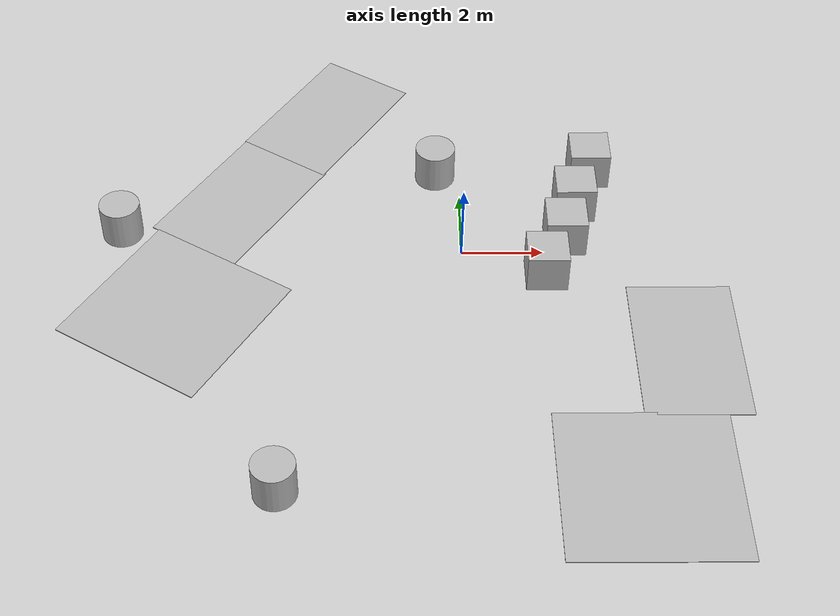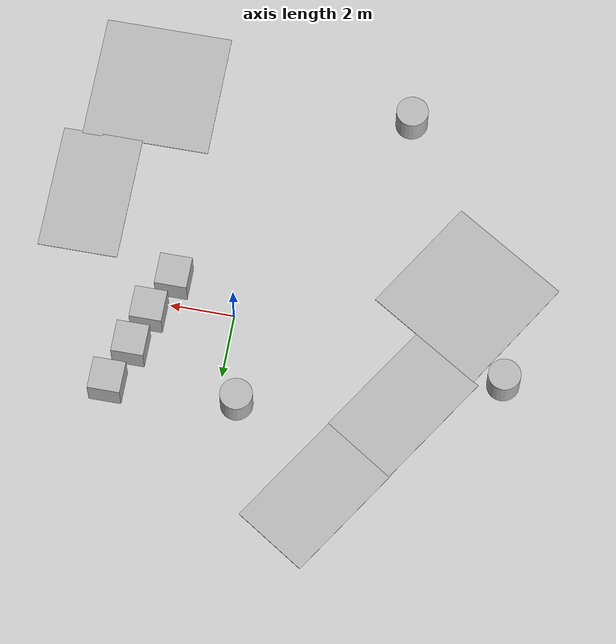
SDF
<?xml version="1.0" ?>
<sdf version="1.6">
  <world name="default">

    <include>
      <uri>model://sun</uri>
    </include>

    <include>
      <uri>model://asphalt_plane</uri>
    </include>

    <include>
      <uri>model://blue_tape_line</uri>
      <pose>5.17 -3.25 0.05 0 0 0</pose>
      <name>line1</name>
    </include>

    <include>
      <uri>model://blue_tape_line</uri>
      <pose>-5.578 1.897 0.05 0 0 2.5658</pose>
      <name>line2</name>
    </include>

    <include>
      <uri>model://blue_tape_line</uri>
      <pose>-3.462 5.199 0.05 0 0 2.5678</pose>
      <name>line3</name>
    </include>

    <include>
      <uri>model://blue_tape_corner</uri>
      <pose>3.832 -7.182 0.05 0 0 0</pose>
      <name>corner1</name>
    </include>

    <include>
      <uri>model://blue_tape_corner</uri>
      <pose>-6.911 -1.941 0.05 0 0 -2.1287</pose>
      <name>corner2</name>
    </include>

    <model name='box1'>
      <static>1</static>
      <pose>3.34 2.9 0.5 0 0 0</pose>
      <link name='link'>
        <collision name='collision'>
          <geometry>
            <box>
              <size>1 1 1</size>
            </box>
          </geometry>
          <max_contacts>10</max_contacts>
          <surface>
            <contact>
              <ode/>
            </contact>
            <bounce/>
            <friction>
              <torsional>
                <ode/>
              </torsional>
              <ode/>
            </friction>
          </surface>
        </collision>
        <visual name='visual'>
          <cast_shadows>0</cast_shadows>
          <geometry>
            <box>
              <size>1 1 1</size>
            </box>
          </geometry>
        </visual>
        <self_collide>0</self_collide>
        <enable_wind>0</enable_wind>
        <kinematic>0</kinematic>
      </link>
    </model>

    <model name='box2'>
      <static>1</static>
      <pose>2.88 1.61 0.5 0 0 0</pose>
      <link name='link'>
        <collision name='collision'>
          <geometry>
            <box>
              <size>1 1 1</size>
            </box>
          </geometry>
          <max_contacts>10</max_contacts>
          <surface>
            <contact>
              <ode/>
            </contact>
            <bounce/>
            <friction>
              <torsional>
                <ode/>
              </torsional>
              <ode/>
            </friction>
          </surface>
        </collision>
        <visual name='visual'>
          <cast_shadows>0</cast_shadows>
          <geometry>
            <box>
              <size>1 1 1</size>
            </box>
          </geometry>
        </visual>
        <self_collide>0</self_collide>
        <enable_wind>0</enable_wind>
        <kinematic>0</kinematic>
      </link>
    </model>

    <model name='box3'>
      <static>1</static>
      <pose>2.56 0.42 0.5 0 0 0</pose>
      <link name='link'>
        <collision name='collision'>
          <geometry>
            <box>
              <size>1 1 1</size>
            </box>
          </geometry>
          <max_contacts>10</max_contacts>
          <surface>
            <contact>
              <ode/>
            </contact>
            <bounce/>
            <friction>
              <torsional>
                <ode/>
              </torsional>
              <ode/>
            </friction>
          </surface>
        </collision>
        <visual name='visual'>
          <cast_shadows>0</cast_shadows>
          <geometry>
            <box>
              <size>1 1 1</size>
            </box>
          </geometry>
        </visual>
        <self_collide>0</self_collide>
        <enable_wind>0</enable_wind>
        <kinematic>0</kinematic>
      </link>
    </model>

    <model name='box4'>
      <static>1</static>
      <pose>2.02 -0.78 0.5 0 0 0</pose>
      <link name='link'>
        <collision name='collision'>
          <geometry>
            <box>
              <size>1 1 1</size>
            </box>
          </geometry>
          <max_contacts>10</max_contacts>
          <surface>
            <contact>
              <ode/>
            </contact>
            <bounce/>
            <friction>
              <torsional>
                <ode/>
              </torsional>
              <ode/>
            </friction>
          </surface>
        </collision>
        <visual name='visual'>
          <cast_shadows>0</cast_shadows>
          <geometry>
            <box>
              <size>1 1 1</size>
            </box>
          </geometry>
        </visual>
        <self_collide>0</self_collide>
        <enable_wind>0</enable_wind>
        <kinematic>0</kinematic>
      </link>
    </model>

    <model name='cyl1'>
      <static>1</static>
      <pose>-0.61 2.8 0.5 0 0 0</pose>
      <link name='link'>
        <collision name='collision'>
          <geometry>
            <cylinder>
              <radius>0.5</radius>
              <length>1</length>
            </cylinder>
          </geometry>
          <max_contacts>10</max_contacts>
          <surface>
            <contact>
              <ode/>
            </contact>
            <bounce/>
            <friction>
              <torsional>
                <ode/>
              </torsional>
              <ode/>
            </friction>
          </surface>
        </collision>
        <visual name='visual'>
          <cast_shadows>0</cast_shadows>
          <geometry>
            <cylinder>
              <radius>0.5</radius>
              <length>1</length>
            </cylinder>
          </geometry>
        </visual>
        <self_collide>0</self_collide>
        <enable_wind>0</enable_wind>
        <kinematic>0</kinematic>
      </link>
    </model>

    <model name='cyl2'>
      <static>1</static>
      <pose>-8.44 0.74 0.5 0 0 0</pose>
      <link name='link'>
        <collision name='collision'>
          <geometry>
            <cylinder>
              <radius>0.5</radius>
              <length>1</length>
            </cylinder>
          </geometry>
          <max_contacts>10</max_contacts>
          <surface>
            <contact>
              <ode/>
            </contact>
            <bounce/>
            <friction>
              <torsional>
                <ode/>
              </torsional>
              <ode/>
            </friction>
          </surface>
        </collision>
        <visual name='visual'>
          <cast_shadows>0</cast_shadows>
          <geometry>
            <cylinder>
              <radius>0.5</radius>
              <length>1</length>
            </cylinder>
          </geometry>
        </visual>
        <self_collide>0</self_collide>
        <enable_wind>0</enable_wind>
        <kinematic>0</kinematic>
      </link>
    </model>

    <model name='cyl3'>
      <static>1</static>
      <pose>-4.26 -7.33 0.5 0 0 0</pose>
      <link name='link'>
        <collision name='collision'>
          <geometry>
            <cylinder>
              <radius>0.5</radius>
              <length>1</length>
            </cylinder>
          </geometry>
          <max_contacts>10</max_contacts>
          <surface>
            <contact>
              <ode/>
            </contact>
            <bounce/>
            <friction>
              <torsional>
                <ode/>
              </torsional>
              <ode/>
            </friction>
          </surface>
        </collision>
        <visual name='visual'>
          <cast_shadows>0</cast_shadows>
          <geometry>
            <cylinder>
              <radius>0.5</radius>
              <length>1</length>
            </cylinder>
          </geometry>
        </visual>
        <self_collide>0</self_collide>
        <enable_wind>0</enable_wind>
        <kinematic>0</kinematic>
      </link>
    </model>

  </world>
</sdf>

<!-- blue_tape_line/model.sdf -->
<sdf version="1.5">
  <model name="blue_tape_line">
    <static>true</static>
    <link name="link">
      <collision name="collision">
        <geometry>
          <box>
            <size>2.5 4 0.02</size>
          </box>
        </geometry>
      </collision>
      <visual name="visual">
        <cast_shadows>false</cast_shadows>
        <geometry>
          <box>
            <size>2.5 4 0.02</size>
          </box>
        </geometry>
        <material>
          <script>
            <uri>model://blue_tape_line/materials/scripts</uri>
            <uri>model://blue_tape_line/materials/textures</uri>
            <name>vrc/tape_line</name>
          </script>
        </material>
      </visual>
    </link>
  </model>
</sdf>

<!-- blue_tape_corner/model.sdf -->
<sdf version="1.5">
  <model name="blue_tape_corner">
    <static>true</static>
    <link name="link">
      <collision name="collision">
        <geometry>
          <box>
            <size>4 4 .02</size>
          </box>
        </geometry>
      </collision>
      <visual name="visual">
        <cast_shadows>false</cast_shadows>
        <geometry>
          <box>
            <size>4 4 .02</size>
          </box>
        </geometry>
        <material>
          <script>
            <uri>model://blue_tape_corner/materials/scripts</uri>
            <uri>model://blue_tape_corner/materials/textures</uri>
            <name>vrc/tape_corner</name>
          </script>
        </material>
      </visual>
    </link>
  </model>
</sdf>
